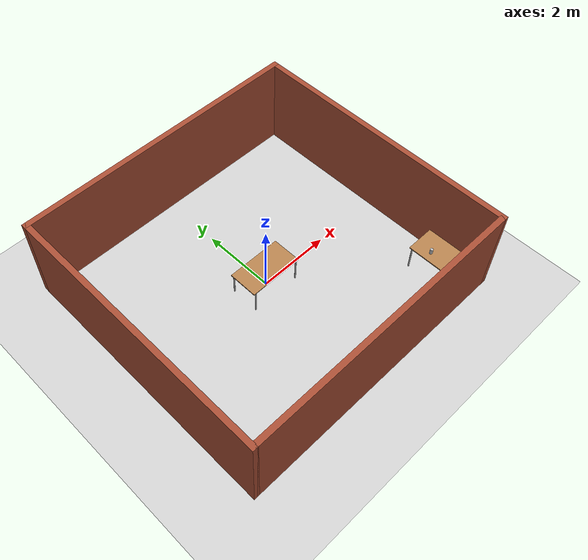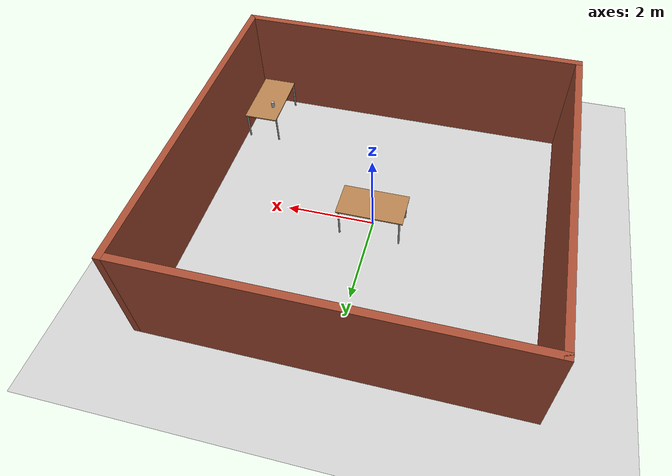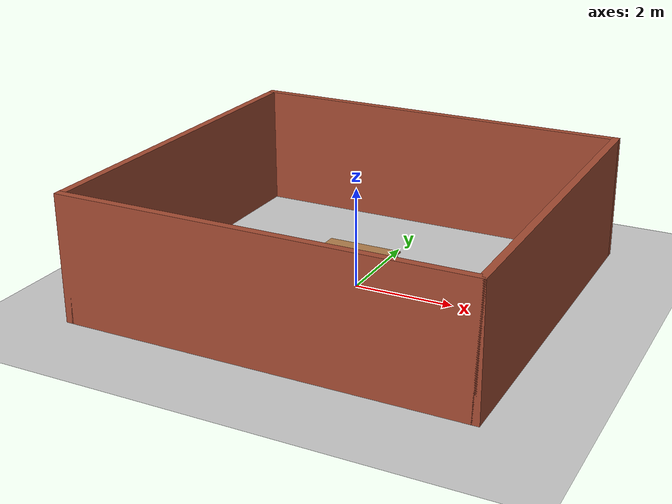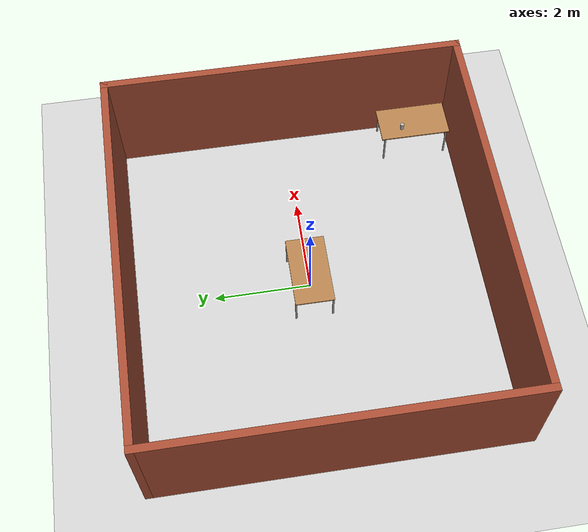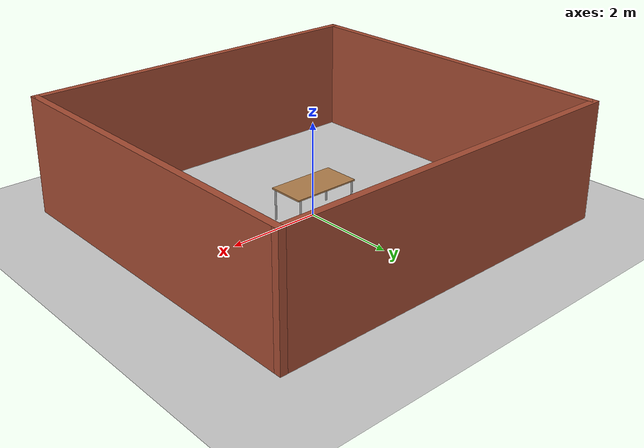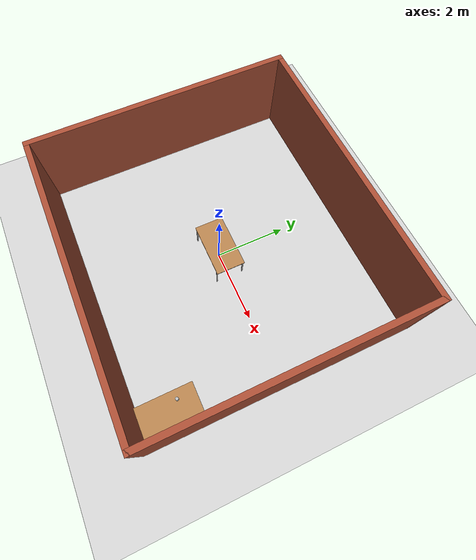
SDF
<sdf version="1.7">
 <world name="default">
  <physics type="ode">
   <ode>
    <solver>
     <type>quick</type>
     <iters>50</iters>
     <sor>1.4</sor>
     <use_dynamic_moi_rescaling>0</use_dynamic_moi_rescaling>
    </solver>
    <constraints>
     <cfm>0</cfm>
     <erp>0.2</erp>
     <contact_max_correcting_vel>100</contact_max_correcting_vel>
     <contact_surface_layer>0</contact_surface_layer>
    </constraints>
   </ode>
   <real_time_update_rate>1000</real_time_update_rate>
   <max_step_size>0.001</max_step_size>
   <real_time_factor>1</real_time_factor>
  </physics>
  <light name="sun" type="directional">
   <pose>0 0 10 0 -0 0</pose>
   <diffuse>0.8 0.8 0.8 1</diffuse>
   <specular>0.2 0.2 0.2 1</specular>
   <attenuation>
    <range>1000</range>
    <constant>0.9</constant>
    <linear>0.01</linear>
    <quadratic>0.001</quadratic>
   </attenuation>
   <direction>-0.5 0.1 -0.9</direction>
   <spot><inner_angle>0</inner_angle><outer_angle>0</outer_angle><falloff>0</falloff></spot>
  </light>
  <model name="ground_plane">
   <static>1</static>
   <link name="link">
    <collision name="collision">
     <geometry><plane><normal>0 0 1</normal><size>100 100</size></plane></geometry>
     <surface><friction><ode><mu>100</mu><mu2>50</mu2></ode></friction></surface>
    </collision>
    <visual name="visual">
     <cast_shadows>0</cast_shadows>
     <geometry><plane><normal>0 0 1</normal><size>100 100</size></plane></geometry>
     <material>
      <script><uri>file://media/materials/scripts/gazebo.material</uri><name>Gazebo/Grey</name></script>
     </material>
    </visual>
   </link>
  </model>
  <gravity>0 0 -9.81</gravity>
  <magnetic_field>6e-06 2.3e-05 -4.2e-05</magnetic_field>
  <atmosphere type="adiabatic"/>
  <scene><ambient>0.4 0.4 0.4 1</ambient><background>0.7 0.7 0.7 1</background><shadows>1</shadows></scene>
  <audio><device>default</device></audio>
  <spherical_coordinates>
   <surface_model>EARTH_WGS84</surface_model>
   <latitude_deg>0</latitude_deg>
   <longitude_deg>0</longitude_deg>
   <elevation>0</elevation>
   <heading_deg>0</heading_deg>
  </spherical_coordinates>
  <plugin name="gazebo_ros_state" filename="libgazebo_ros_state.so"><update_rate>30</update_rate></plugin>
  <model name="table">
   <static>1</static>
   <link name="link">
    <collision name="surface">
     <pose>0 0 1 0 -0 0</pose>
     <geometry><box><size>1.5 0.8 0.03</size></box></geometry>
     <surface><friction><ode><mu>0.6</mu><mu2>0.6</mu2></ode></friction></surface>
    </collision>
    <visual name="visual1">
     <pose>0 0 1 0 -0 0</pose>
     <geometry><box><size>1.5 0.8 0.03</size></box></geometry>
     <material>
      <script><uri>file://media/materials/scripts/gazebo.material</uri><name>Gazebo/Wood</name></script>
     </material>
    </visual>
    <collision name="front_left_leg">
     <pose>0.68 0.38 0.5 0 -0 0</pose>
     <geometry><cylinder><radius>0.02</radius><length>1</length></cylinder></geometry>
    </collision>
    <visual name="front_left_leg">
     <pose>0.68 0.38 0.5 0 -0 0</pose>
     <geometry><cylinder><radius>0.02</radius><length>1</length></cylinder></geometry>
     <material>
      <script><uri>file://media/materials/scripts/gazebo.material</uri><name>Gazebo/Grey</name></script>
     </material>
    </visual>
    <collision name="front_right_leg">
     <pose>0.68 -0.38 0.5 0 -0 0</pose>
     <geometry><cylinder><radius>0.02</radius><length>1</length></cylinder></geometry>
    </collision>
    <visual name="front_right_leg">
     <pose>0.68 -0.38 0.5 0 -0 0</pose>
     <geometry><cylinder><radius>0.02</radius><length>1</length></cylinder></geometry>
     <material>
      <script><uri>file://media/materials/scripts/gazebo.material</uri><name>Gazebo/Grey</name></script>
     </material>
    </visual>
    <collision name="back_right_leg">
     <pose>-0.68 -0.38 0.5 0 -0 0</pose>
     <geometry><cylinder><radius>0.02</radius><length>1</length></cylinder></geometry>
    </collision>
    <visual name="back_right_leg">
     <pose>-0.68 -0.38 0.5 0 -0 0</pose>
     <geometry><cylinder><radius>0.02</radius><length>1</length></cylinder></geometry>
     <material>
      <script><uri>file://media/materials/scripts/gazebo.material</uri><name>Gazebo/Grey</name></script>
     </material>
    </visual>
    <collision name="back_left_leg">
     <pose>-0.68 0.38 0.5 0 -0 0</pose>
     <geometry><cylinder><radius>0.02</radius><length>1</length></cylinder></geometry>
    </collision>
    <visual name="back_left_leg">
     <pose>-0.68 0.38 0.5 0 -0 0</pose>
     <geometry><cylinder><radius>0.02</radius><length>1</length></cylinder></geometry>
     <material>
      <script><uri>file://media/materials/scripts/gazebo.material</uri><name>Gazebo/Grey</name></script>
     </material>
    </visual>
   </link>
   <pose>3.377 -2.7998 -0.307595 0 0 -1.56889</pose>
  </model>
  <model name="cocacola">
   <static>0</static>
   <link name="link">
    <inertial>
     <mass>0.25</mass>
     <inertia><ixx>0</ixx><ixy>0</ixy><ixz>0</ixz><iyy>0</iyy><iyz>0</iyz><izz>0</izz></inertia>
    </inertial>
    <collision name="collision">
     <pose>0 0 0.075 -3.14159 -0 0</pose>
     <geometry><cylinder><radius>0.04</radius><length>0.15</length></cylinder></geometry>
    </collision>
    <visual name="visual">
     <pose>0 0 0.075 -3.14159 -0 0</pose>
     <geometry><cylinder><radius>0.04</radius><length>0.15</length></cylinder></geometry>
     <material>
      <script>
       <uri>model://cocacola/material/scripts</uri>
       <uri>model://cocacola/material/textures</uri>
       <name>Custom/cocacola</name>
      </script>
     </material>
    </visual>
    <velocity_decay><linear>0</linear><angular>0</angular></velocity_decay>
   </link>
   <pose>3.21286 -2.52884 0.707411 2.3e-05 -0.000153 6.4e-05</pose>
  </model>
  <plugin name="gazebo_link_attacher" filename="libgazebo_link_attacher.so"/>
  <model name="table_clone">
   <static>1</static>
   <link name="link">
    <collision name="surface">
     <pose>0 0 1 0 -0 0</pose>
     <geometry><box><size>1.5 0.8 0.03</size></box></geometry>
     <surface><friction><ode><mu>0.6</mu><mu2>0.6</mu2></ode></friction></surface>
    </collision>
    <visual name="visual1">
     <pose>0 0 1 0 -0 0</pose>
     <geometry><box><size>1.5 0.8 0.03</size></box></geometry>
     <material>
      <script><uri>file://media/materials/scripts/gazebo.material</uri><name>Gazebo/Wood</name></script>
     </material>
    </visual>
    <collision name="front_left_leg">
     <pose>0.68 0.38 0.5 0 -0 0</pose>
     <geometry><cylinder><radius>0.02</radius><length>1</length></cylinder></geometry>
    </collision>
    <visual name="front_left_leg">
     <pose>0.68 0.38 0.5 0 -0 0</pose>
     <geometry><cylinder><radius>0.02</radius><length>1</length></cylinder></geometry>
     <material>
      <script><uri>file://media/materials/scripts/gazebo.material</uri><name>Gazebo/Grey</name></script>
     </material>
    </visual>
    <collision name="front_right_leg">
     <pose>0.68 -0.38 0.5 0 -0 0</pose>
     <geometry><cylinder><radius>0.02</radius><length>1</length></cylinder></geometry>
    </collision>
    <visual name="front_right_leg">
     <pose>0.68 -0.38 0.5 0 -0 0</pose>
     <geometry><cylinder><radius>0.02</radius><length>1</length></cylinder></geometry>
     <material>
      <script><uri>file://media/materials/scripts/gazebo.material</uri><name>Gazebo/Grey</name></script>
     </material>
    </visual>
    <collision name="back_right_leg">
     <pose>-0.68 -0.38 0.5 0 -0 0</pose>
     <geometry><cylinder><radius>0.02</radius><length>1</length></cylinder></geometry>
    </collision>
    <visual name="back_right_leg">
     <pose>-0.68 -0.38 0.5 0 -0 0</pose>
     <geometry><cylinder><radius>0.02</radius><length>1</length></cylinder></geometry>
     <material>
      <script><uri>file://media/materials/scripts/gazebo.material</uri><name>Gazebo/Grey</name></script>
     </material>
    </visual>
    <collision name="back_left_leg">
     <pose>-0.68 0.38 0.5 0 -0 0</pose>
     <geometry><cylinder><radius>0.02</radius><length>1</length></cylinder></geometry>
    </collision>
    <visual name="back_left_leg">
     <pose>-0.68 0.38 0.5 0 -0 0</pose>
     <geometry><cylinder><radius>0.02</radius><length>1</length></cylinder></geometry>
     <material>
      <script><uri>file://media/materials/scripts/gazebo.material</uri><name>Gazebo/Grey</name></script>
     </material>
    </visual>
   </link>
   <pose>-0.006431 0.017135 -0.307595 0 0 -0.000567</pose>
  </model>
  <model name="small_room">
   <pose>-0.005677 -0.007193 0 0 -0 0</pose>
   <link name="Wall_13">
    <collision name="Wall_13_Collision">
     <geometry><box><size>7.5 0.15 2.5</size></box></geometry>
     <pose>0 0 1.25 0 -0 0</pose>
    </collision>
    <visual name="Wall_13_Visual">
     <pose>0 0 1.25 0 -0 0</pose>
     <geometry><box><size>7.5 0.15 2.5</size></box></geometry>
     <material>
      <script><uri>file://media/materials/scripts/gazebo.material</uri><name>Gazebo/Bricks</name></script>
      <ambient>1 1 1 1</ambient>
     </material>
     <meta><layer>0</layer></meta>
    </visual>
    <pose>-3.925 0 0 0 -0 -1.5708</pose>
   </link>
   <link name="Wall_14">
    <collision name="Wall_14_Collision">
     <geometry><box><size>8 0.15 2.5</size></box></geometry>
     <pose>0 0 1.25 0 -0 0</pose>
    </collision>
    <visual name="Wall_14_Visual">
     <pose>0 0 1.25 0 -0 0</pose>
     <geometry><box><size>8 0.15 2.5</size></box></geometry>
     <material>
      <script><uri>file://media/materials/scripts/gazebo.material</uri><name>Gazebo/Bricks</name></script>
      <ambient>1 1 1 1</ambient>
     </material>
     <meta><layer>0</layer></meta>
    </visual>
    <pose>-0 -3.675 0 0 -0 0</pose>
   </link>
   <link name="Wall_15">
    <collision name="Wall_15_Collision">
     <geometry><box><size>7.5 0.15 2.5</size></box></geometry>
     <pose>0 0 1.25 0 -0 0</pose>
    </collision>
    <visual name="Wall_15_Visual">
     <pose>0 0 1.25 0 -0 0</pose>
     <geometry><box><size>7.5 0.15 2.5</size></box></geometry>
     <material>
      <script><uri>file://media/materials/scripts/gazebo.material</uri><name>Gazebo/Bricks</name></script>
      <ambient>1 1 1 1</ambient>
     </material>
     <meta><layer>0</layer></meta>
    </visual>
    <pose>3.925 0 0 0 -0 1.5708</pose>
   </link>
   <link name="Wall_16">
    <collision name="Wall_16_Collision">
     <geometry><box><size>8 0.15 2.5</size></box></geometry>
     <pose>0 0 1.25 0 -0 0</pose>
    </collision>
    <visual name="Wall_16_Visual">
     <pose>0 0 1.25 0 -0 0</pose>
     <geometry><box><size>8 0.15 2.5</size></box></geometry>
     <material>
      <script><uri>file://media/materials/scripts/gazebo.material</uri><name>Gazebo/Bricks</name></script>
      <ambient>1 1 1 1</ambient>
     </material>
     <meta><layer>0</layer></meta>
    </visual>
    <pose>-0 3.675 0 0 -0 3.14159</pose>
   </link>
   <static>1</static>
  </model>
 </world>
</sdf>
